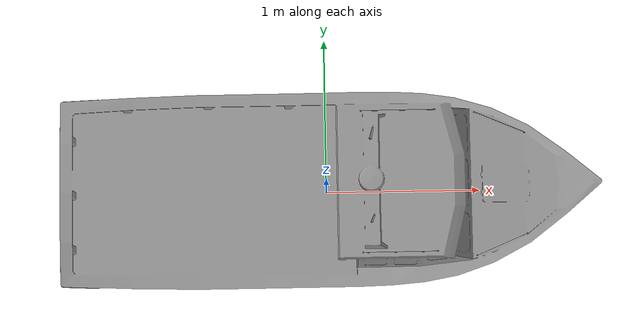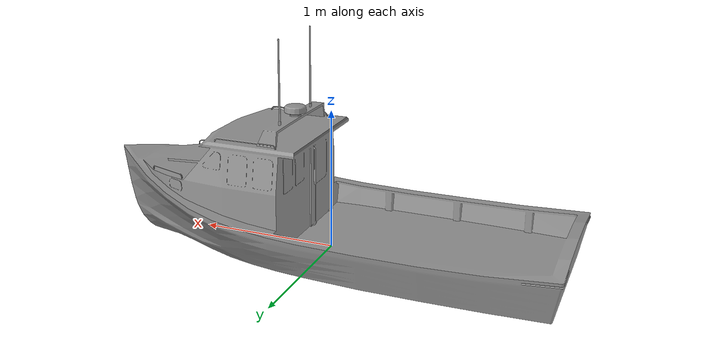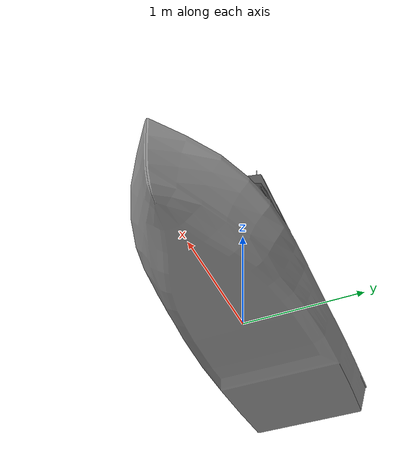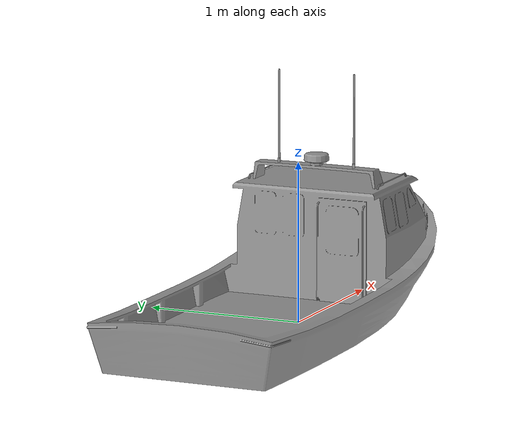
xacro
<?xml version="1.0"?>
<robot name="vessel_e" xmlns:xacro="http://www.ros.org/wiki/xacro">
  <xacro:arg name="namespace" default="vessel_e"/>
  <xacro:property name="ns" value="$(arg namespace)"/>
  <xacro:property name="mesh_path" value="file://$(find model)/models/vessel_e/meshes/Boat05.dae"/>
  <xacro:property name="tex_path" value="file://$(find model)/models/vessel_e/materials/textures"/>

  <link name="${ns}/base_link">
    <visual>
      <origin rpy="0 0 -1.5708" xyz="0 0 0"/>
      <geometry>
        <mesh filename="${mesh_path}" scale="0.25 0.25 0.25"/>
      </geometry>
      <material name="boat5_albedo">
        <texture filename="${tex_path}/Boat05_Albedo.jpg"/>
      </material>
    </visual>
    <collision>
      <origin rpy="0 0 -1.5708" xyz="0 0 0"/>
      <geometry>
        <mesh filename="${mesh_path}" scale="0.25 0.25 0.25"/>
      </geometry>
    </collision>
    <inertial>
      <mass value="1500.0"/>
      <origin xyz="0 0 -0.1" rpy="0 0 0"/>
      <inertia ixx="3625" ixy="0" iyy="25000" ixz="0" iyz="0" izz="27625"/>
    </inertial>
  </link>

  <gazebo reference="${ns}/base_link">
    <material>Gazebo/Grey</material>
  </gazebo>
</robot>
